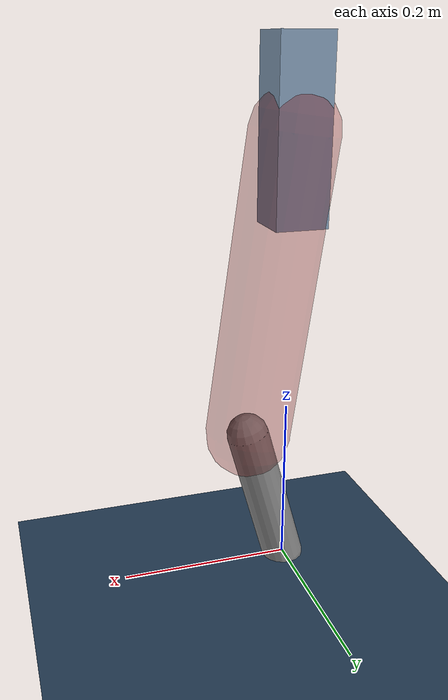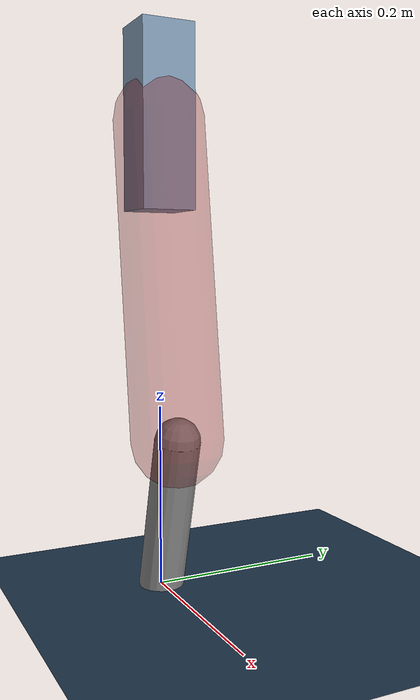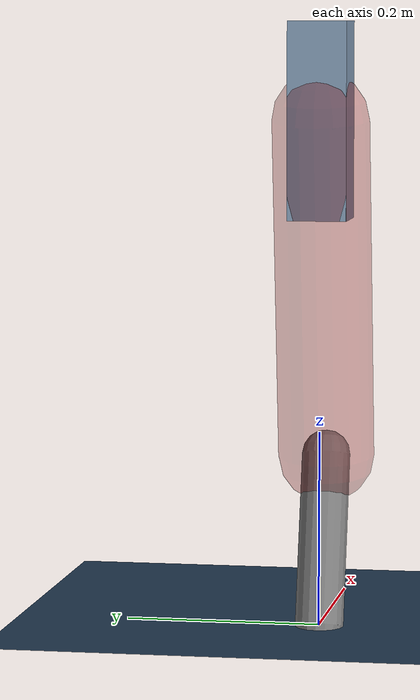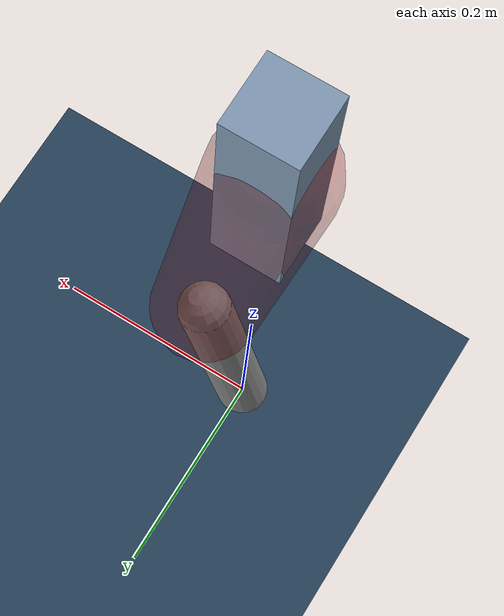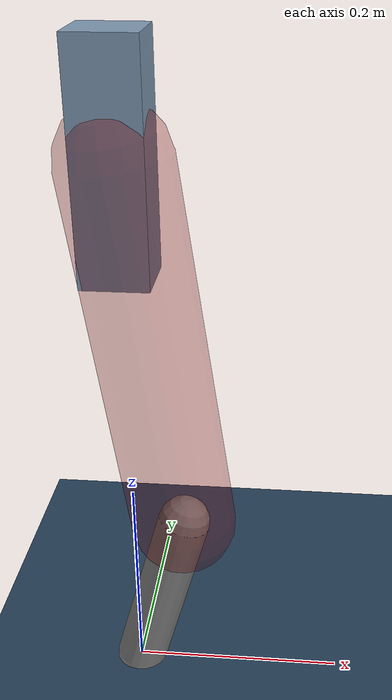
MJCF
<mujoco model="Hopper2D">
	<compiler inertiafromgeom="true" angle="radian" />
	<option timestep="0.001" integrator="implicit" cone="elliptic" solver="Newton" tolerance="1e-10" />

	<default>
		<geom contype="1" conaffinity="1" condim="3" friction="2 0.005 0.0001" solref="0.005 1" />
		<joint limited="true" damping="0.1" />
	</default>

	<asset>
		<texture name="skybox" type="skybox" builtin="gradient" rgb1=".4 .6 .8" rgb2="0 0 0" width="800" height="800" />
		<texture name="grid" type="2d" builtin="checker" rgb1=".1 .2 .3" rgb2=".2 .3 .4" width="300" height="300" mark="edge" markrgb=".2 .3 .4" />
		<material name="ground" texture="grid" texrepeat="1 1" texuniform="true" reflectance="0.1" />
		<material name="leg" rgba="0.5 0.6 0.7 1" />
	</asset>

	<worldbody>

		<geom name="floor" type="plane" size="5 5 0.25" material="ground" />

		<light directional="false" diffuse="0.8 0.8 0.8" specular="0.3 0.3 0.3" pos="0 0 2" dir="0 0 -1" />
		<light mode="targetbodycom" target="base" directional="false" diffuse="0.8 0.8 0.8" specular="0.3 0.3 0.3" pos="0 0 2" dir="0 0 -1" />

		<camera name="fixed" pos="0 -2 1" xyaxes="1 0 0 0 0 1" />
		<camera name="tracking" mode="trackcom" pos="0 -3 1" />

		<body name="root" pos="0 0 0.5173991153081063">
			<joint name="slide_x" type="slide" axis="1 0 0" range="-100 100" />
			<joint name="slide_z" type="slide" axis="0 0 1" range="0 10" />

			<body name="base" pos="0 0 0">
				<geom name="torso" type="box" size="0.03 0.03 0.1" mass="2.058" material="leg" />

				<body name="link1" pos="0 0 0" euler="0 1.4326821404579182 0">
					<joint type="hinge" axis="0 -1 0" pos="0 0 0" name="hinge1" limited="true" range="-3.14 3.14" stiffness="0" damping="0.1" />
					<geom name="thigh" type="capsule" fromto="0 0 0 0.3499694664401135 0 0" size="0.05" rgba="0.5 0 0 0.3" mass="1.1266145060323178" />

					<body name="link2" pos="0.3499694664401135 0 0" euler="0 0.4131244067896043 0">
						<joint type="hinge" axis="0 -1 0" pos="0 0 0" name="hinge2" limited="true" range="-3.14 3.14" stiffness="0" damping="0.1" />
						<geom name="shank" type="capsule" fromto="0 0 0 0.17742964886799278 0 0" size="0.025" mass="0.3816866839811935" />

					</body>
				</body>
			</body>
		</body>
	</worldbody>

	<actuator>
		<motor name="torque1" joint="hinge1" ctrlrange="-61.33269759681097 61.33269759681097" ctrllimited="true" gear="1" />
		<motor name="torque2" joint="hinge2" ctrlrange="-19.594903662921723 19.594903662921723" ctrllimited="true" gear="1" />
	</actuator>
</mujoco>
